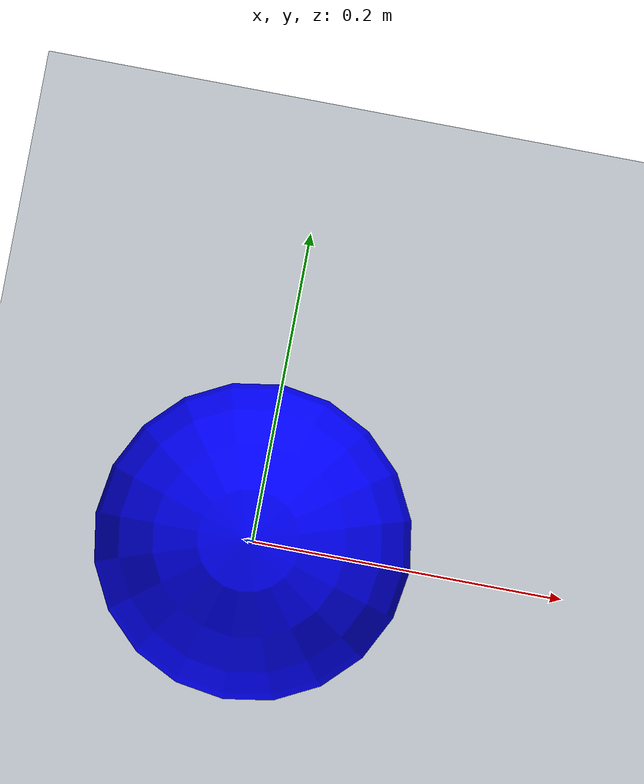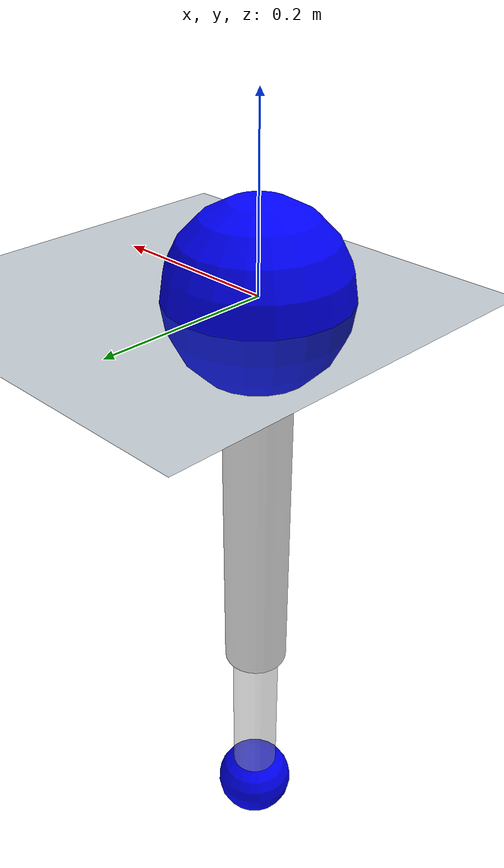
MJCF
<mujoco model="hopper">

    <!-- Simulation settings -->
    <option solver="Newton" integrator="implicitfast" timestep="0.01" iterations="10" ls_iterations="10" cone="elliptic"/>

    <!-- Inertia is computed from geometry -->
    <compiler inertiafromgeom="true" />

    <asset>
        <texture type="skybox" builtin="flat" rgb1="0 0 0" rgb2="0 0 0" width="512" height="512"/>
        <texture type="2d" name="groundplane" builtin="checker" mark="edge" rgb1="0.2 0.3 0.4" rgb2="0.1 0.2 0.3" markrgb="0.9 0.9 0.9" width="300" height="300"/>
        <material name="groundplane" texture="groundplane" texuniform="true" texrepeat="5 5" reflectance="0.2"/>
    </asset>

    <!-- Memory settings (default is 1000) -->
    <size nstack="3000" />

    <worldbody>

        <!-- Add light -->
        <light pos="-0.5 0.0 2.0" dir="0 0 -1" directional="true"/>

        <!-- Ground -->
        <geom name="ground" type="plane" size="0 0 0.005" material="groundplane" contype="1" conaffinity="6"/>

        <!-- Body -->
        <body name="torso" pos="0 0 0.0">
            <joint name="px"    type="slide" axis="1 0 0"/>
            <joint name="pz"    type="slide" axis="0 0 1"/>
            <joint name="theta" type="hinge" axis="0 1 0" limited="true" range="-405.0 405.0"/>
            <geom name="torso" type="sphere" size="0.1" rgba="1.0 0.424 0.047 1" contype="2" conaffinity="1"/>
            <site name="torso" type="sphere" size="0.102" pos="0 0 0" rgba="0 0 1 1"/>
            <geom name="upper_leg" type="cylinder" fromto="0 0 0 0 0 -0.5" size="0.04" rgba="0.4 0.4 0.4 0.5"/>

            <!-- SpringLoaded Leg -->
            <body name="lower_leg" pos="0 0 -0.5">
                <joint name="leg" type="slide" axis="0 0 1" range="-0.25 0.25" springref="0.0" stiffness="2000.0" damping="50.0"/>
                <geom name="lower_leg" type="cylinder" fromto="0 0 0.25 0 0 -0.25" size="0.03" rgba="0.8 0.8 0.8 0.5"/>
                <geom name="foot" type="sphere" size="0.05" pos="0 0 -0.25" rgba="0.1 0.1 0.1 1" contype="4" conaffinity="1"/>
                <site name="foot" type="sphere" size="0.052" pos="0 0 -0.25" rgba="0 0 1 1"/>
            </body>
        </body>

    </worldbody>

    <!-- Sensors -->
    <sensor>
        <touch name="torso_touch" site="torso"/>
        <touch name="foot_touch"  site="foot"/>
    </sensor>

    <!-- Actuators -->
    <actuator>
        <motor name="body_motor" joint="theta" ctrllimited="true" ctrlrange="-20 20"/>
        <motor name="leg_motor" joint="leg" ctrllimited="true" ctrlrange="-300 300"/>
    </actuator>

    <!-- default configuration (when you press "Load key" button) -->
    <keyframe>
        <key name="default" qpos="0.0 1.25 0.0 0.0" qvel="0 0 0 0" />
    </keyframe>

</mujoco>
